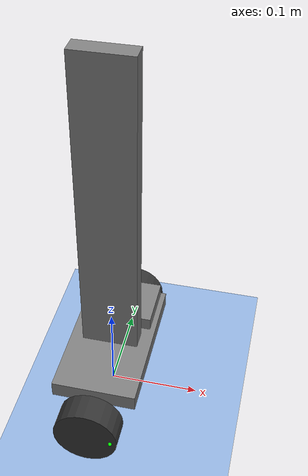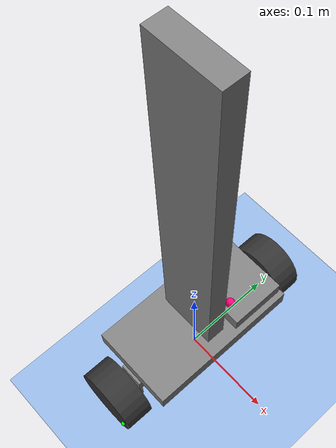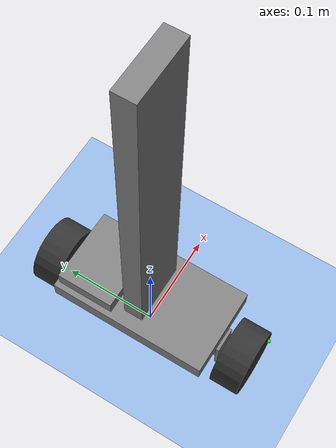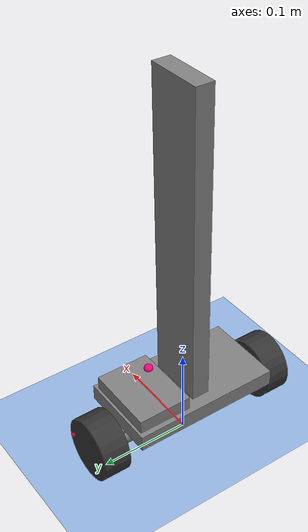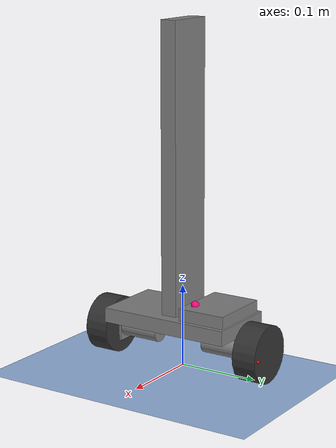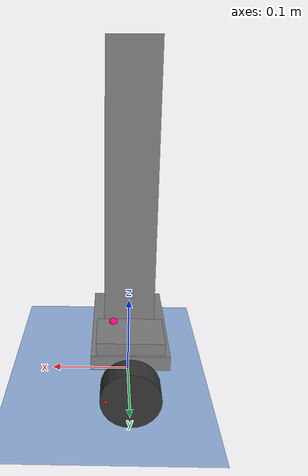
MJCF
<mujoco model="model2">
  <option gravity="0 0 -9.81" integrator="implicitfast"/>

  <asset>
    <texture name="grid" type="2d" builtin="checker"
             rgb1="0.9 0.95 1.0" rgb2="0.25 0.45 0.75"
             width="512" height="512"/>
    <material name="grid" texture="grid" texrepeat="300 300" reflectance="0.05"/>
  </asset>

  <worldbody>       <!--friction = sliding, torsional, rolling-->
    <geom name="floor" type="plane" size="50 50 0.1" material="grid" friction="0.1 0.005 0.0001"/>

    <light pos="0 0 3" dir="0 0 -1"/>

    <body name="robot" pos="0 0 0.0610"> <!-- where robot origin starts (0.0605 is wheels touching ground perfectly)-->
      <!-- if no freejoint, then it stays frozen where spawned-->   <!-- forward x axis-->
      <freejoint/>

      <!-- base -->
      <body name="base" pos="0 0 0">
        <geom type="box" size="0.046 0.083 0.009" rgba="0.5 0.5 0.5 1" pos="0 0 0" mass="0.160"/>
      </body>

      <!-- brackets -->
      <body name="left_bracket" pos="0 0 0">
        <geom type="box" size="0.013 0.015 0.0015" rgba="0.5 0.5 0.5 1" pos="0 0.068 -0.0105" mass="0.005"/> <!-- bracket left top bit -->
        <geom type="box" size="0.013 0.0015 0.0165" rgba="0.5 0.5 0.5 1" pos="0 0.0845 -0.0255" mass="0.006"/> <!-- bracket left motor bit -->
      </body>

      <body name="right_bracket" pos="0 0 0">
        <geom type="box" size="0.013 0.015 0.0015" rgba="0.5 0.5 0.5 1" pos="0 -0.068 -0.0105" mass="0.005"/> <!-- bracket right top bit -->
        <geom type="box" size="0.013 0.0015 0.0165" rgba="0.5 0.5 0.5 1" pos="0 -0.0845 -0.0255" mass="0.006"/> <!-- bracket right motor bit -->
      </body>

      <!-- motors -->  <!-- (radius, half len)-->
      <body name="left_motor" pos="0 0 0">
        <geom type="cylinder" size="0.0125 0.0250" zaxis="0 1 0" rgba="0.5 0.5 0.5 1" pos="0 0.058 -0.0255" mass="0.087"/> <!-- motor body left-->
        <geom type="cylinder" size="0.0015 0.0025" zaxis="0 1 0" rgba="0.5 0.5 0.5 1" pos="0 0.0875 -0.0255" mass="0.010"/> <!-- motor rod left-->
      </body>

      <body name="right_motor" pos="0 0 0">
        <geom type="cylinder" size="0.0125 0.0250" zaxis="0 1 0" rgba="0.5 0.5 0.5 1" pos="0 -0.058 -0.0255" mass="0.087"/> <!-- motor body right-->
        <geom type="cylinder" size="0.0015 0.0025" zaxis="0 1 0" rgba="0.5 0.5 0.5 1" pos="0 -0.0875 -0.0255" mass="0.010"/> <!-- motor rod right-->
      </body>

      <!-- neck NEW -->
      <body name="neck" pos="0 0 0">
        <geom type="box" size="0.0315 0.010 0.175" rgba="0.5 0.5 0.5 1" pos="0 0 0.184" mass="0.226"/>
      </body>

      <!-- battery block-->

      <!-- electronics block -->
      <body name="electronics_block" pos="0 0 0">
        <geom type="box" size="0.04 0.03 0.01" rgba="0.5 0.5 0.5 1" pos="0 0.050 0.014" mass="0.074"/>
      </body>

      <!-- WHEELS not rigid-->
      <body name="wheel_left" pos="0 0.105 -0.0255">
        <joint name="wheel_left_joint" type="hinge" axis="0 1 0" frictionloss="0.2" damping="0.0" armature="6.8e-4"/> <!-- rotate about y -->
        <geom type="cylinder" size="0.035 0.015" zaxis="0 1 0" rgba="0.2 0.2 0.2 1" pos="0 0 0" mass="0.049" friction="1.0 0.005 0.0001"/> <!-- wheel left-->
        <site name="spin_left"  pos="0.028 0.016 0" size="0.002" rgba="1 0 0 1"/> <!-- red marker to see left wheel spin direction-->
      </body>

      <body name="wheel_right" pos="0 -0.105 -0.0255">
        <joint name="wheel_right_joint" type="hinge" axis="0 1 0" frictionloss="0.2" damping="0.0" armature="6.8e-4"/> <!-- rotate about y -->
        <geom type="cylinder" size="0.035 0.015" zaxis="0 1 0" rgba="0.2 0.2 0.2 1" pos="0 0 0" mass="0.049" friction="1.0 0.005 0.0001"/> <!-- wheel left  (friction="slide torsion roll")-->
        <site name="spin_right"  pos="0.028 -0.016 0" size="0.002" rgba="0 1 0 1"/> <!-- green marker to see right wheel spin direction-->
      </body>

      <!-- site for imu sensor to attach to -->
      <site name="imu" pos="0.02 0.03 0.025" size="0.005" rgba="1 0 0.5 1"/>

    </body>

  </worldbody>

  <!-- stop contact between motor rod and wheels -->
  <contact>
    <exclude body1="left_motor" body2="wheel_left"/>
    <exclude body1="right_motor" body2="wheel_right"/>
  </contact>

  <!-- need going over - more accurate actuator model -->
  <actuator>
    <general name="wheel_left_motor" joint="wheel_left_joint" gear="1" ctrlrange="-1 1" gaintype="fixed" gainprm="0.43 0 0" biastype="affine" biasprm="0 0 -0.017"/>
    <general name="wheel_right_motor" joint="wheel_right_joint" gear="1" ctrlrange="-1 1" gaintype="fixed" gainprm="0.43 0 0" biastype="affine" biasprm="0 0 -0.017"/>
  </actuator>

  <!-- add NEW jointpos sensor -> differentiate to get vel BETTER -->
  <sensor>
    <framequat name="imu_quat" objtype="site" objname="imu"/>
    <gyro name="imu_gyro" site="imu"/>
    <jointpos name="wheel_left_pos" joint="wheel_left_joint"/>
    <jointpos name="wheel_right_pos" joint="wheel_right_joint"/>
    <jointvel name="wheel_left_vel" joint="wheel_left_joint"/>
    <jointvel name="wheel_right_vel" joint="wheel_right_joint"/>
  </sensor>

</mujoco>
